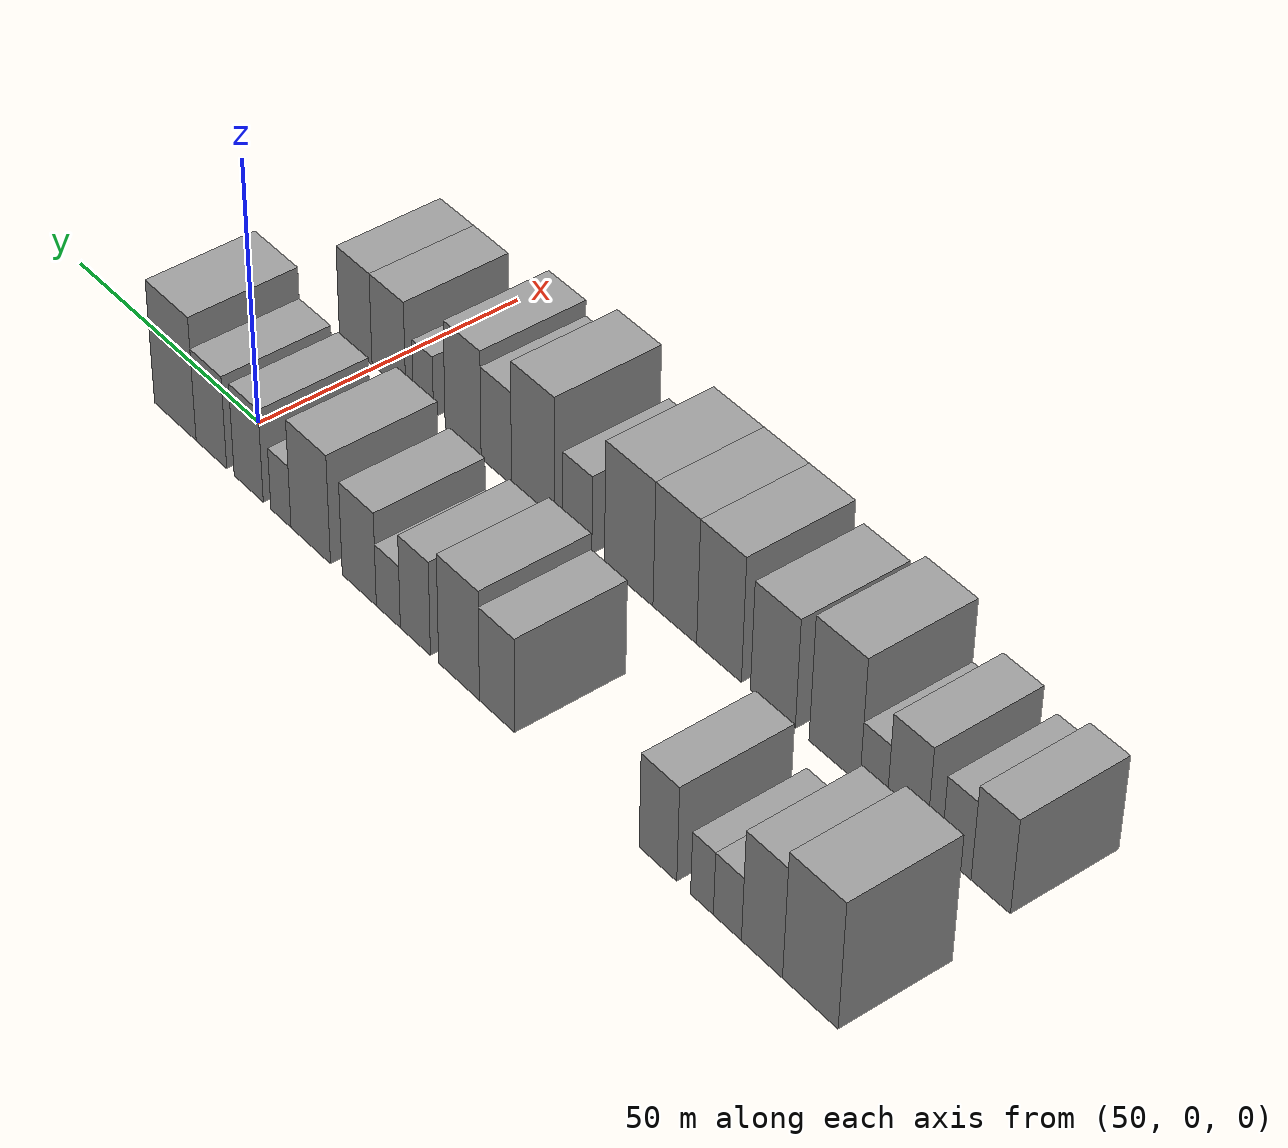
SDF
<sdf version="1.6">
 <world name="default">
  <model name="building_16">
   <static>1</static>
   <pose>50.0000 -142.8023 0 0.000000 0.000000 0.000000</pose>
   <link name="link">
    <pose>0 0 12.00 0 0 0</pose>
    <collision name="collision"><geometry><box><size>20.0000 11.3943 24.0000</size></box></geometry></collision>
    <visual name="visual">
     <cast_shadows>0</cast_shadows>
     <geometry><box><size>20.0000 11.3943 24.0000</size></box></geometry>
     <material>
      <script>
       <uri>model://grey_wall/materials/scripts</uri>
       <uri>model://grey_wall/materials/textures</uri>
       <name>vrc/grey_wall</name>
      </script>
     </material>
    </visual>
   </link>
  </model>
  <model name="building_17">
   <static>1</static>
   <pose>50.0000 -132.8097 0 0.000000 0.000000 0.000000</pose>
   <link name="link">
    <pose>0 0 10.50 0 0 0</pose>
    <collision name="collision"><geometry><box><size>20.0000 8.5907 21.0000</size></box></geometry></collision>
    <visual name="visual">
     <cast_shadows>0</cast_shadows>
     <geometry><box><size>20.0000 8.5907 21.0000</size></box></geometry>
     <material>
      <script>
       <uri>model://grey_wall/materials/scripts</uri>
       <uri>model://grey_wall/materials/textures</uri>
       <name>vrc/grey_wall</name>
      </script>
     </material>
    </visual>
   </link>
  </model>
  <model name="building_18">
   <static>1</static>
   <pose>50.0000 -125.5334 0 0.000000 0.000000 0.000000</pose>
   <link name="link">
    <pose>0 0 6.00 0 0 0</pose>
    <collision name="collision"><geometry><box><size>20.0000 5.9619 12.0000</size></box></geometry></collision>
    <visual name="visual">
     <cast_shadows>0</cast_shadows>
     <geometry><box><size>20.0000 5.9619 12.0000</size></box></geometry>
     <material>
      <script>
       <uri>model://grey_wall/materials/scripts</uri>
       <uri>model://grey_wall/materials/textures</uri>
       <name>vrc/grey_wall</name>
      </script>
     </material>
    </visual>
   </link>
  </model>
  <model name="building_19">
   <static>1</static>
   <pose>50.0000 -120.1101 0 0.000000 0.000000 0.000000</pose>
   <link name="link">
    <pose>0 0 6.00 0 0 0</pose>
    <collision name="collision"><geometry><box><size>20.0000 4.8848 12.0000</size></box></geometry></collision>
    <visual name="visual">
     <cast_shadows>0</cast_shadows>
     <geometry><box><size>20.0000 4.8848 12.0000</size></box></geometry>
     <material>
      <script>
       <uri>model://grey_wall/materials/scripts</uri>
       <uri>model://grey_wall/materials/textures</uri>
       <name>vrc/grey_wall</name>
      </script>
     </material>
    </visual>
   </link>
  </model>
  <model name="building_20">
   <static>1</static>
   <pose>50.0000 -110.5472 0 0.000000 0.000000 0.000000</pose>
   <link name="link">
    <pose>0 0 9.00 0 0 0</pose>
    <collision name="collision"><geometry><box><size>20.0000 8.2411 18.0000</size></box></geometry></collision>
    <visual name="visual">
     <cast_shadows>0</cast_shadows>
     <geometry><box><size>20.0000 8.2411 18.0000</size></box></geometry>
     <material>
      <script>
       <uri>model://grey_wall/materials/scripts</uri>
       <uri>model://grey_wall/materials/textures</uri>
       <name>vrc/grey_wall</name>
      </script>
     </material>
    </visual>
   </link>
  </model>
  <model name="building_21">
   <static>1</static>
   <pose>50.0000 -73.9878 0 0.000000 0.000000 0.000000</pose>
   <link name="link">
    <pose>0 0 9.00 0 0 0</pose>
    <collision name="collision"><geometry><box><size>20.0000 8.2926 18.0000</size></box></geometry></collision>
    <visual name="visual">
     <cast_shadows>0</cast_shadows>
     <geometry><box><size>20.0000 8.2926 18.0000</size></box></geometry>
     <material>
      <script>
       <uri>model://grey_wall/materials/scripts</uri>
       <uri>model://grey_wall/materials/textures</uri>
       <name>vrc/grey_wall</name>
      </script>
     </material>
    </visual>
   </link>
  </model>
  <model name="building_22">
   <static>1</static>
   <pose>50.0000 -64.9480 0 0.000000 0.000000 0.000000</pose>
   <link name="link">
    <pose>0 0 10.50 0 0 0</pose>
    <collision name="collision"><geometry><box><size>20.0000 9.7870 21.0000</size></box></geometry></collision>
    <visual name="visual">
     <cast_shadows>0</cast_shadows>
     <geometry><box><size>20.0000 9.7870 21.0000</size></box></geometry>
     <material>
      <script>
       <uri>model://grey_wall/materials/scripts</uri>
       <uri>model://grey_wall/materials/textures</uri>
       <name>vrc/grey_wall</name>
      </script>
     </material>
    </visual>
   </link>
  </model>
  <model name="building_23">
   <static>1</static>
   <pose>50.0000 -54.3780 0 0.000000 0.000000 0.000000</pose>
   <link name="link">
    <pose>0 0 9.00 0 0 0</pose>
    <collision name="collision"><geometry><box><size>20.0000 7.3532 18.0000</size></box></geometry></collision>
    <visual name="visual">
     <cast_shadows>0</cast_shadows>
     <geometry><box><size>20.0000 7.3532 18.0000</size></box></geometry>
     <material>
      <script>
       <uri>model://grey_wall/materials/scripts</uri>
       <uri>model://grey_wall/materials/textures</uri>
       <name>vrc/grey_wall</name>
      </script>
     </material>
    </visual>
   </link>
  </model>
  <model name="building_24">
   <static>1</static>
   <pose>50.0000 -47.7225 0 0.000000 0.000000 0.000000</pose>
   <link name="link">
    <pose>0 0 6.00 0 0 0</pose>
    <collision name="collision"><geometry><box><size>20.0000 5.9577 12.0000</size></box></geometry></collision>
    <visual name="visual">
     <cast_shadows>0</cast_shadows>
     <geometry><box><size>20.0000 5.9577 12.0000</size></box></geometry>
     <material>
      <script>
       <uri>model://grey_wall/materials/scripts</uri>
       <uri>model://grey_wall/materials/textures</uri>
       <name>vrc/grey_wall</name>
      </script>
     </material>
    </visual>
   </link>
  </model>
  <model name="building_25">
   <static>1</static>
   <pose>50.0000 -40.4584 0 0.000000 0.000000 0.000000</pose>
   <link name="link">
    <pose>0 0 9.00 0 0 0</pose>
    <collision name="collision"><geometry><box><size>20.0000 8.5706 18.0000</size></box></geometry></collision>
    <visual name="visual">
     <cast_shadows>0</cast_shadows>
     <geometry><box><size>20.0000 8.5706 18.0000</size></box></geometry>
     <material>
      <script>
       <uri>model://grey_wall/materials/scripts</uri>
       <uri>model://grey_wall/materials/textures</uri>
       <name>vrc/grey_wall</name>
      </script>
     </material>
    </visual>
   </link>
  </model>
  <model name="building_26">
   <static>1</static>
   <pose>50.0000 -28.0884 0 0.000000 0.000000 0.000000</pose>
   <link name="link">
    <pose>0 0 10.50 0 0 0</pose>
    <collision name="collision"><geometry><box><size>20.0000 10.1693 21.0000</size></box></geometry></collision>
    <visual name="visual">
     <cast_shadows>0</cast_shadows>
     <geometry><box><size>20.0000 10.1693 21.0000</size></box></geometry>
     <material>
      <script>
       <uri>model://grey_wall/materials/scripts</uri>
       <uri>model://grey_wall/materials/textures</uri>
       <name>vrc/grey_wall</name>
      </script>
     </material>
    </visual>
   </link>
  </model>
  <model name="building_27">
   <static>1</static>
   <pose>50.0000 -20.3685 0 0.000000 0.000000 0.000000</pose>
   <link name="link">
    <pose>0 0 6.00 0 0 0</pose>
    <collision name="collision"><geometry><box><size>20.0000 5.2705 12.0000</size></box></geometry></collision>
    <visual name="visual">
     <cast_shadows>0</cast_shadows>
     <geometry><box><size>20.0000 5.2705 12.0000</size></box></geometry>
     <material>
      <script>
       <uri>model://grey_wall/materials/scripts</uri>
       <uri>model://grey_wall/materials/textures</uri>
       <name>vrc/grey_wall</name>
      </script>
     </material>
    </visual>
   </link>
  </model>
  <model name="building_28">
   <static>1</static>
   <pose>50.0000 -11.8762 0 0.000000 0.000000 0.000000</pose>
   <link name="link">
    <pose>0 0 9.00 0 0 0</pose>
    <collision name="collision"><geometry><box><size>20.0000 7.7143 18.0000</size></box></geometry></collision>
    <visual name="visual">
     <cast_shadows>0</cast_shadows>
     <geometry><box><size>20.0000 7.7143 18.0000</size></box></geometry>
     <material>
      <script>
       <uri>model://grey_wall/materials/scripts</uri>
       <uri>model://grey_wall/materials/textures</uri>
       <name>vrc/grey_wall</name>
      </script>
     </material>
    </visual>
   </link>
  </model>
  <model name="building_29">
   <static>1</static>
   <pose>50.0000 -1.8797 0 0.000000 0.000000 0.000000</pose>
   <link name="link">
    <pose>0 0 9.00 0 0 0</pose>
    <collision name="collision"><geometry><box><size>20.0000 8.2786 18.0000</size></box></geometry></collision>
    <visual name="visual">
     <cast_shadows>0</cast_shadows>
     <geometry><box><size>20.0000 8.2786 18.0000</size></box></geometry>
     <material>
      <script>
       <uri>model://grey_wall/materials/scripts</uri>
       <uri>model://grey_wall/materials/textures</uri>
       <name>vrc/grey_wall</name>
      </script>
     </material>
    </visual>
   </link>
  </model>
  <model name="building_30">
   <static>1</static>
   <pose>50.0000 7.9761 0 0.000000 0.000000 0.000000</pose>
   <link name="link">
    <pose>0 0 12.00 0 0 0</pose>
    <collision name="collision"><geometry><box><size>20.0000 11.4330 24.0000</size></box></geometry></collision>
    <visual name="visual">
     <cast_shadows>0</cast_shadows>
     <geometry><box><size>20.0000 11.4330 24.0000</size></box></geometry>
     <material>
      <script>
       <uri>model://grey_wall/materials/scripts</uri>
       <uri>model://grey_wall/materials/textures</uri>
       <name>vrc/grey_wall</name>
      </script>
     </material>
    </visual>
   </link>
  </model>
  <model name="building_76">
   <static>1</static>
   <pose>82.0000 -142.8274 0 0.000000 0.000000 0.000000</pose>
   <link name="link">
    <pose>0 0 9.00 0 0 0</pose>
    <collision name="collision"><geometry><box><size>20.0000 7.9900 18.0000</size></box></geometry></collision>
    <visual name="visual">
     <cast_shadows>0</cast_shadows>
     <geometry><box><size>20.0000 7.9900 18.0000</size></box></geometry>
     <material>
      <script>
       <uri>model://grey_wall/materials/scripts</uri>
       <uri>model://grey_wall/materials/textures</uri>
       <name>vrc/grey_wall</name>
      </script>
     </material>
    </visual>
   </link>
  </model>
  <model name="building_77">
   <static>1</static>
   <pose>82.0000 -135.7622 0 0.000000 0.000000 0.000000</pose>
   <link name="link">
    <pose>0 0 7.50 0 0 0</pose>
    <collision name="collision"><geometry><box><size>20.0000 6.1403 15.0000</size></box></geometry></collision>
    <visual name="visual">
     <cast_shadows>0</cast_shadows>
     <geometry><box><size>20.0000 6.1403 15.0000</size></box></geometry>
     <material>
      <script>
       <uri>model://grey_wall/materials/scripts</uri>
       <uri>model://grey_wall/materials/textures</uri>
       <name>vrc/grey_wall</name>
      </script>
     </material>
    </visual>
   </link>
  </model>
  <model name="building_78">
   <static>1</static>
   <pose>82.0000 -125.5248 0 0.000000 0.000000 0.000000</pose>
   <link name="link">
    <pose>0 0 9.00 0 0 0</pose>
    <collision name="collision"><geometry><box><size>20.0000 8.3344 18.0000</size></box></geometry></collision>
    <visual name="visual">
     <cast_shadows>0</cast_shadows>
     <geometry><box><size>20.0000 8.3344 18.0000</size></box></geometry>
     <material>
      <script>
       <uri>model://grey_wall/materials/scripts</uri>
       <uri>model://grey_wall/materials/textures</uri>
       <name>vrc/grey_wall</name>
      </script>
     </material>
    </visual>
   </link>
  </model>
  <model name="building_79">
   <static>1</static>
   <pose>82.0000 -118.4855 0 0.000000 0.000000 0.000000</pose>
   <link name="link">
    <pose>0 0 6.00 0 0 0</pose>
    <collision name="collision"><geometry><box><size>20.0000 5.7442 12.0000</size></box></geometry></collision>
    <visual name="visual">
     <cast_shadows>0</cast_shadows>
     <geometry><box><size>20.0000 5.7442 12.0000</size></box></geometry>
     <material>
      <script>
       <uri>model://grey_wall/materials/scripts</uri>
       <uri>model://grey_wall/materials/textures</uri>
       <name>vrc/grey_wall</name>
      </script>
     </material>
    </visual>
   </link>
  </model>
  <model name="building_80">
   <static>1</static>
   <pose>82.0000 -110.1300 0 0.000000 0.000000 0.000000</pose>
   <link name="link">
    <pose>0 0 12.00 0 0 0</pose>
    <collision name="collision"><geometry><box><size>20.0000 10.9669 24.0000</size></box></geometry></collision>
    <visual name="visual">
     <cast_shadows>0</cast_shadows>
     <geometry><box><size>20.0000 10.9669 24.0000</size></box></geometry>
     <material>
      <script>
       <uri>model://grey_wall/materials/scripts</uri>
       <uri>model://grey_wall/materials/textures</uri>
       <name>vrc/grey_wall</name>
      </script>
     </material>
    </visual>
   </link>
  </model>
  <model name="building_81">
   <static>1</static>
   <pose>82.0000 -96.6548 0 0.000000 0.000000 0.000000</pose>
   <link name="link">
    <pose>0 0 10.50 0 0 0</pose>
    <collision name="collision"><geometry><box><size>20.0000 9.9836 21.0000</size></box></geometry></collision>
    <visual name="visual">
     <cast_shadows>0</cast_shadows>
     <geometry><box><size>20.0000 9.9836 21.0000</size></box></geometry>
     <material>
      <script>
       <uri>model://grey_wall/materials/scripts</uri>
       <uri>model://grey_wall/materials/textures</uri>
       <name>vrc/grey_wall</name>
      </script>
     </material>
    </visual>
   </link>
  </model>
  <model name="building_82">
   <static>1</static>
   <pose>82.0000 -84.5716 0 0.000000 0.000000 0.000000</pose>
   <link name="link">
    <pose>0 0 12.00 0 0 0</pose>
    <collision name="collision"><geometry><box><size>20.0000 10.1828 24.0000</size></box></geometry></collision>
    <visual name="visual">
     <cast_shadows>0</cast_shadows>
     <geometry><box><size>20.0000 10.1828 24.0000</size></box></geometry>
     <material>
      <script>
       <uri>model://grey_wall/materials/scripts</uri>
       <uri>model://grey_wall/materials/textures</uri>
       <name>vrc/grey_wall</name>
      </script>
     </material>
    </visual>
   </link>
  </model>
  <model name="building_83">
   <static>1</static>
   <pose>82.0000 -74.4212 0 0.000000 0.000000 0.000000</pose>
   <link name="link">
    <pose>0 0 12.00 0 0 0</pose>
    <collision name="collision"><geometry><box><size>20.0000 10.1178 24.0000</size></box></geometry></collision>
    <visual name="visual">
     <cast_shadows>0</cast_shadows>
     <geometry><box><size>20.0000 10.1178 24.0000</size></box></geometry>
     <material>
      <script>
       <uri>model://grey_wall/materials/scripts</uri>
       <uri>model://grey_wall/materials/textures</uri>
       <name>vrc/grey_wall</name>
      </script>
     </material>
    </visual>
   </link>
  </model>
  <model name="building_84">
   <static>1</static>
   <pose>82.0000 -63.6096 0 0.000000 0.000000 0.000000</pose>
   <link name="link">
    <pose>0 0 12.00 0 0 0</pose>
    <collision name="collision"><geometry><box><size>20.0000 11.5054 24.0000</size></box></geometry></collision>
    <visual name="visual">
     <cast_shadows>0</cast_shadows>
     <geometry><box><size>20.0000 11.5054 24.0000</size></box></geometry>
     <material>
      <script>
       <uri>model://grey_wall/materials/scripts</uri>
       <uri>model://grey_wall/materials/textures</uri>
       <name>vrc/grey_wall</name>
      </script>
     </material>
    </visual>
   </link>
  </model>
  <model name="building_85">
   <static>1</static>
   <pose>82.0000 -51.2688 0 0.000000 0.000000 0.000000</pose>
   <link name="link">
    <pose>0 0 7.50 0 0 0</pose>
    <collision name="collision"><geometry><box><size>20.0000 7.1763 15.0000</size></box></geometry></collision>
    <visual name="visual">
     <cast_shadows>0</cast_shadows>
     <geometry><box><size>20.0000 7.1763 15.0000</size></box></geometry>
     <material>
      <script>
       <uri>model://grey_wall/materials/scripts</uri>
       <uri>model://grey_wall/materials/textures</uri>
       <name>vrc/grey_wall</name>
      </script>
     </material>
    </visual>
   </link>
  </model>
  <model name="building_86">
   <static>1</static>
   <pose>82.0000 -40.4096 0 0.000000 0.000000 0.000000</pose>
   <link name="link">
    <pose>0 0 12.00 0 0 0</pose>
    <collision name="collision"><geometry><box><size>20.0000 10.5422 24.0000</size></box></geometry></collision>
    <visual name="visual">
     <cast_shadows>0</cast_shadows>
     <geometry><box><size>20.0000 10.5422 24.0000</size></box></geometry>
     <material>
      <script>
       <uri>model://grey_wall/materials/scripts</uri>
       <uri>model://grey_wall/materials/textures</uri>
       <name>vrc/grey_wall</name>
      </script>
     </material>
    </visual>
   </link>
  </model>
  <model name="building_87">
   <static>1</static>
   <pose>82.0000 -31.3382 0 0.000000 0.000000 0.000000</pose>
   <link name="link">
    <pose>0 0 9.00 0 0 0</pose>
    <collision name="collision"><geometry><box><size>20.0000 7.6005 18.0000</size></box></geometry></collision>
    <visual name="visual">
     <cast_shadows>0</cast_shadows>
     <geometry><box><size>20.0000 7.6005 18.0000</size></box></geometry>
     <material>
      <script>
       <uri>model://grey_wall/materials/scripts</uri>
       <uri>model://grey_wall/materials/textures</uri>
       <name>vrc/grey_wall</name>
      </script>
     </material>
    </visual>
   </link>
  </model>
  <model name="building_88">
   <static>1</static>
   <pose>82.0000 -22.9500 0 0.000000 0.000000 0.000000</pose>
   <link name="link">
    <pose>0 0 10.50 0 0 0</pose>
    <collision name="collision"><geometry><box><size>20.0000 9.1758 21.0000</size></box></geometry></collision>
    <visual name="visual">
     <cast_shadows>0</cast_shadows>
     <geometry><box><size>20.0000 9.1758 21.0000</size></box></geometry>
     <material>
      <script>
       <uri>model://grey_wall/materials/scripts</uri>
       <uri>model://grey_wall/materials/textures</uri>
       <name>vrc/grey_wall</name>
      </script>
     </material>
    </visual>
   </link>
  </model>
  <model name="building_89">
   <static>1</static>
   <pose>82.0000 -12.7396 0 0.000000 0.000000 0.000000</pose>
   <link name="link">
    <pose>0 0 6.00 0 0 0</pose>
    <collision name="collision"><geometry><box><size>20.0000 5.2451 12.0000</size></box></geometry></collision>
    <visual name="visual">
     <cast_shadows>0</cast_shadows>
     <geometry><box><size>20.0000 5.2451 12.0000</size></box></geometry>
     <material>
      <script>
       <uri>model://grey_wall/materials/scripts</uri>
       <uri>model://grey_wall/materials/textures</uri>
       <name>vrc/grey_wall</name>
      </script>
     </material>
    </visual>
   </link>
  </model>
  <model name="building_90">
   <static>1</static>
   <pose>82.0000 -3.6642 0 0.000000 0.000000 0.000000</pose>
   <link name="link">
    <pose>0 0 9.00 0 0 0</pose>
    <collision name="collision"><geometry><box><size>20.0000 8.9056 18.0000</size></box></geometry></collision>
    <visual name="visual">
     <cast_shadows>0</cast_shadows>
     <geometry><box><size>20.0000 8.9056 18.0000</size></box></geometry>
     <material>
      <script>
       <uri>model://grey_wall/materials/scripts</uri>
       <uri>model://grey_wall/materials/textures</uri>
       <name>vrc/grey_wall</name>
      </script>
     </material>
    </visual>
   </link>
  </model>
  <model name="building_91">
   <static>1</static>
   <pose>82.0000 5.1485 0 0.000000 0.000000 0.000000</pose>
   <link name="link">
    <pose>0 0 9.00 0 0 0</pose>
    <collision name="collision"><geometry><box><size>20.0000 8.7198 18.0000</size></box></geometry></collision>
    <visual name="visual">
     <cast_shadows>0</cast_shadows>
     <geometry><box><size>20.0000 8.7198 18.0000</size></box></geometry>
     <material>
      <script>
       <uri>model://grey_wall/materials/scripts</uri>
       <uri>model://grey_wall/materials/textures</uri>
       <name>vrc/grey_wall</name>
      </script>
     </material>
    </visual>
   </link>
  </model>
 </world>
</sdf>
